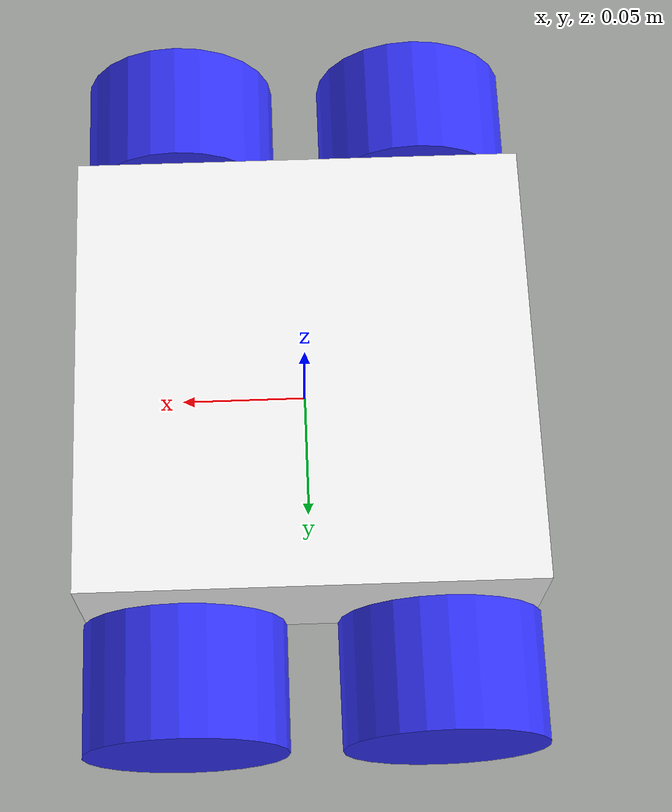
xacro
<?xml version="1.0"?>
<robot xmlns:xacro="http://www.ros.org/wiki/xacro" >

    <xacro:include filename="inertial_macros.xacro"/>

    <material name="white">
        <color rgba="1 1 1 1" />
    </material>

    <material name="orange">
        <color rgba="1 0.3 0.1 1"/>
    </material>

    <material name="blue">
        <color rgba="0.2 0.2 1 1"/>
    </material>

    <material name="black">
        <color rgba="0 0 0 1"/>
    </material>

    <!-- BASE LINK -->

    <link name="base_link">

    </link>

    <!-- CHASSIS LINK -->

    <joint name="chassis_joint" type="fixed">
        <parent link="base_link"/>
        <child link="chassis"/>
        <origin xyz="0 0 0"/>
    </joint>

    <link name="chassis">
        <visual>
            <origin xyz="0.0 0.0 0.01"/>
            <geometry>
                <box size="0.180 0.180 0.06"/>
            </geometry>
            <material name="white"/>
        </visual>
        <collision>
            <origin xyz="0.0 0 0.01"/>
            <geometry>
                <box size="0.18 0.18 0.06"/>
            </geometry>
        </collision>
        <xacro:inertial_box mass="0.5" x="0.18" y="0.18" z="0.06">
            <origin xyz="0.0 0 0.01" rpy="0 0 0"/>
        </xacro:inertial_box>
    </link>

    <gazebo reference="chassis">
        <material>Gazebo/White</material>
    </gazebo>

    <!-- LEFT WHEEL 1 LINK -->

    <joint name="left_wheel_joint" type="continuous">
        <parent link="base_link"/>
        <child link="left_wheel"/>
        <origin xyz="0.05 0.120 0" rpy="-${pi/2} 0 0" />
        <axis xyz="0 0 1"/>
    </joint>

    <link name="left_wheel">
        <visual>
            <geometry>
                <cylinder radius="0.04" length="0.05"/>
            </geometry>
            <material name="blue"/>
        </visual>
        <collision>
            <geometry>
                <cylinder radius="0.04" length="0.05"/>
            </geometry>
        </collision>
        <xacro:inertial_cylinder mass="0.1" length="0.05" radius="0.04">
            <origin xyz="0 0 0" rpy="0 0 0"/>
        </xacro:inertial_cylinder>
    </link>
    <gazebo reference="left_wheel">
        <material>Gazebo/Blue</material>
    </gazebo>
        <!-- LEFT WHEEL 2 LINK -->

        <joint name="left_wheel_joint_2" type="continuous">
            <parent link="base_link"/>
            <child link="left_wheel_2"/>
            <origin xyz="-0.05 0.120 0" rpy="-${pi/2} 0 0" />
            <axis xyz="0 0 1"/>
        </joint>

        <link name="left_wheel_2">
            <visual>
                <geometry>
                    <cylinder radius="0.04" length="0.05"/>
                </geometry>
                <material name="blue"/>
            </visual>
            <collision>
                <geometry>
                    <cylinder radius="0.04" length="0.05"/>
                </geometry>
            </collision>
            <xacro:inertial_cylinder mass="0.1" length="0.05" radius="0.04">
                <origin xyz="0 0 0" rpy="0 0 0"/>
            </xacro:inertial_cylinder>
        </link>
        <gazebo reference="left_wheel_2">
            <material>Gazebo/Blue</material>
        </gazebo>

    <!-- RIGHT WHEEL 1 LINK -->

    <joint name="right_wheel_joint" type="continuous">
        <parent link="base_link"/>
        <child link="right_wheel"/>
        <origin xyz="0.05 -0.120 0" rpy="${pi/2} 0 0" />
        <axis xyz="0 0 -1"/>
    </joint>

    <link name="right_wheel">
        <visual>
            <geometry>
                <cylinder radius="0.04" length="0.05"/>
            </geometry>
            <material name="blue"/>
        </visual>
        <collision>
            <geometry>
                <cylinder radius="0.04" length="0.05"/>
            </geometry>
        </collision>
        <xacro:inertial_cylinder mass="0.1" length="0.05" radius="0.04">
            <origin xyz="0 0 0" rpy="0 0 0"/>
        </xacro:inertial_cylinder>
    </link>
    <gazebo reference="right_wheel">
        <material>Gazebo/Blue</material>
    </gazebo>
    <!-- RIGHT WHEEL 2 LINK -->

    <joint name="right_wheel_joint_2" type="continuous">
        <parent link="base_link"/>
        <child link="right_wheel_2"/>
        <origin xyz="-.050 -0.120 0" rpy="${pi/2} 0 0" />
        <axis xyz="0 0 -1"/>
    </joint>

    <link name="right_wheel_2">
        <visual>
            <geometry>
                <cylinder radius="0.04" length="0.05"/>
            </geometry>
            <material name="blue"/>
        </visual>
        <collision>
            <geometry>
                <cylinder radius="0.04" length="0.05"/>
            </geometry>
        </collision>
        <xacro:inertial_cylinder mass="0.1" length="0.05" radius="0.04">
            <origin xyz="0 0 0" rpy="0 0 0"/>
        </xacro:inertial_cylinder>
    </link>
    <gazebo reference="right_wheel_2">
        <material>Gazebo/Blue</material>
    </gazebo>
</robot>
